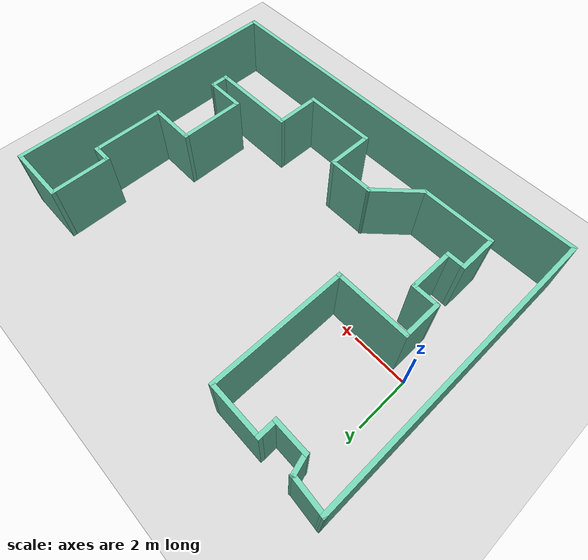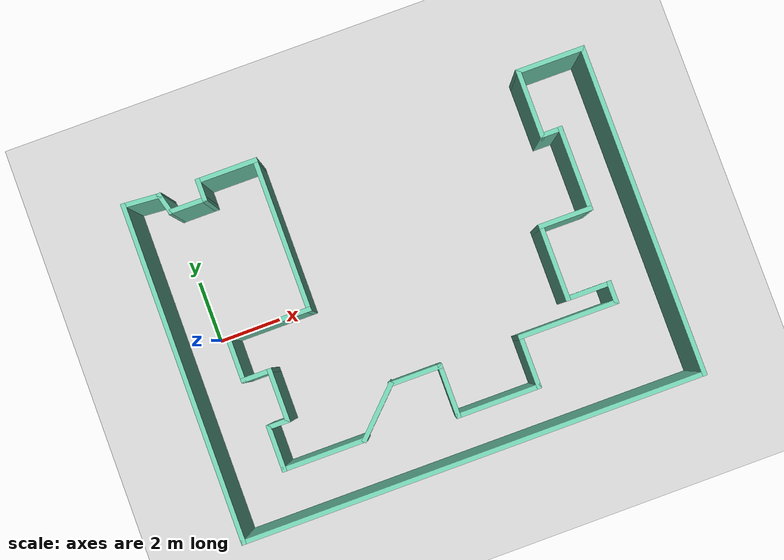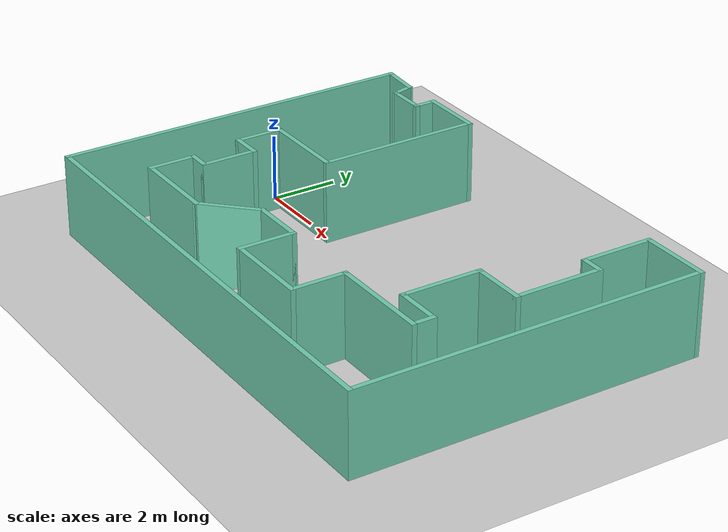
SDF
<sdf version="1.6">
 <world name="default">
  <light name="sun" type="directional">
   <pose>0 0 10 0 -0 0</pose>
   <diffuse>0.8 0.8 0.8 1</diffuse>
   <specular>0.2 0.2 0.2 1</specular>
   <attenuation>
    <range>1000</range>
    <constant>0.9</constant>
    <linear>0.01</linear>
    <quadratic>0.001</quadratic>
   </attenuation>
   <direction>-0.5 0.1 -0.9</direction>
  </light>
  <model name="ground_plane">
   <static>1</static>
   <link name="link">
    <collision name="collision">
     <geometry><plane><normal>0 0 1</normal><size>100 100</size></plane></geometry>
     <surface>
      <contact><collide_bitmask>65535</collide_bitmask></contact>
      <friction><ode><mu>100</mu><mu2>50</mu2></ode></friction>
     </surface>
    </collision>
    <visual name="visual">
     <cast_shadows>0</cast_shadows>
     <geometry><plane><normal>0 0 1</normal><size>100 100</size></plane></geometry>
     <material>
      <script><uri>file://media/materials/scripts/gazebo.material</uri><name>Gazebo/Grey</name></script>
     </material>
    </visual>
   </link>
  </model>
  <gravity>0 0 -9.8</gravity>
  <magnetic_field>6e-06 2.3e-05 -4.2e-05</magnetic_field>
  <atmosphere type="adiabatic"/>
  <physics name="default_physics" default="0" type="ode">
   <max_step_size>0.001</max_step_size>
   <real_time_factor>1</real_time_factor>
   <real_time_update_rate>1000</real_time_update_rate>
  </physics>
  <scene><ambient>0.4 0.4 0.4 1</ambient><background>0.7 0.7 0.7 1</background><shadows>1</shadows></scene>
  <spherical_coordinates>
   <surface_model>EARTH_WGS84</surface_model>
   <latitude_deg>0</latitude_deg>
   <longitude_deg>0</longitude_deg>
   <elevation>0</elevation>
   <heading_deg>0</heading_deg>
  </spherical_coordinates>
  <model name="u.world">
   <pose>6.35241 -0.663313 0 0 -0 0</pose>
   <link name="Wall_0">
    <collision name="Wall_0_Collision">
     <geometry><box><size>11 0.15 2.5</size></box></geometry>
     <pose>0 0 1.25 0 -0 0</pose>
    </collision>
    <visual name="Wall_0_Visual">
     <pose>0 0 1.25 0 -0 0</pose>
     <geometry><box><size>11 0.15 2.5</size></box></geometry>
     <material>
      <script><uri>file://media/materials/scripts/gazebo.material</uri><name>Gazebo/Grey</name></script>
      <ambient>0.435294 0.796078 0.67451 1</ambient>
     </material>
     <meta><layer>0</layer></meta>
    </visual>
    <pose>-7.4225 -0.002497 0 0 0 -1.5708</pose>
   </link>
   <link name="Wall_1">
    <collision name="Wall_1_Collision">
     <geometry><box><size>15 0.15 2.5</size></box></geometry>
     <pose>0 0 1.25 0 -0 0</pose>
    </collision>
    <visual name="Wall_1_Visual">
     <pose>0 0 1.25 0 -0 0</pose>
     <geometry><box><size>15 0.15 2.5</size></box></geometry>
     <material>
      <script><uri>file://media/materials/scripts/gazebo.material</uri><name>Gazebo/Grey</name></script>
      <ambient>0.435294 0.796078 0.67451 1</ambient>
     </material>
     <meta><layer>0</layer></meta>
    </visual>
    <pose>0.002497 -5.4275 0 0 -0 0</pose>
   </link>
   <link name="Wall_10">
    <collision name="Wall_10_Collision">
     <geometry><box><size>0.75 0.15 2.5</size></box></geometry>
     <pose>0 0 1.25 0 -0 0</pose>
    </collision>
    <visual name="Wall_10_Visual">
     <pose>0 0 1.25 0 -0 0</pose>
     <geometry><box><size>0.75 0.15 2.5</size></box></geometry>
     <material>
      <script><uri>file://media/materials/scripts/gazebo.material</uri><name>Gazebo/Grey</name></script>
      <ambient>0.435294 0.796078 0.67451 1</ambient>
     </material>
     <meta><layer>0</layer></meta>
    </visual>
    <pose>5.6775 -2.1775 0 0 0 -1.5708</pose>
   </link>
   <link name="Wall_11">
    <collision name="Wall_11_Collision">
     <geometry><box><size>3.25 0.15 2.5</size></box></geometry>
     <pose>0 0 1.25 0 -0 0</pose>
    </collision>
    <visual name="Wall_11_Visual">
     <pose>0 0 1.25 0 -0 0</pose>
     <geometry><box><size>3.25 0.15 2.5</size></box></geometry>
     <material>
      <script><uri>file://media/materials/scripts/gazebo.material</uri><name>Gazebo/Grey</name></script>
      <ambient>0.435294 0.796078 0.67451 1</ambient>
     </material>
     <meta><layer>0</layer></meta>
    </visual>
    <pose>4.1275 -2.4775 0 0 -0 3.14159</pose>
   </link>
   <link name="Wall_12">
    <collision name="Wall_12_Collision">
     <geometry><box><size>1.75 0.15 2.5</size></box></geometry>
     <pose>0 0 1.25 0 -0 0</pose>
    </collision>
    <visual name="Wall_12_Visual">
     <pose>0 0 1.25 0 -0 0</pose>
     <geometry><box><size>1.75 0.15 2.5</size></box></geometry>
     <material>
      <script><uri>file://media/materials/scripts/gazebo.material</uri><name>Gazebo/Grey</name></script>
      <ambient>0.435294 0.796078 0.67451 1</ambient>
     </material>
     <meta><layer>0</layer></meta>
    </visual>
    <pose>2.5775 -3.2775 0 0 0 -1.5708</pose>
   </link>
   <link name="Wall_13">
    <collision name="Wall_13_Collision">
     <geometry><box><size>2.75 0.15 2.5</size></box></geometry>
     <pose>0 0 1.25 0 -0 0</pose>
    </collision>
    <visual name="Wall_13_Visual">
     <pose>0 0 1.25 0 -0 0</pose>
     <geometry><box><size>2.75 0.15 2.5</size></box></geometry>
     <material>
      <script><uri>file://media/materials/scripts/gazebo.material</uri><name>Gazebo/Grey</name></script>
      <ambient>0.435294 0.796078 0.67451 1</ambient>
     </material>
     <meta><layer>0</layer></meta>
    </visual>
    <pose>1.2775 -4.0775 0 0 -0 3.14159</pose>
   </link>
   <link name="Wall_14">
    <collision name="Wall_14_Collision">
     <geometry><box><size>1.75 0.15 2.5</size></box></geometry>
     <pose>0 0 1.25 0 -0 0</pose>
    </collision>
    <visual name="Wall_14_Visual">
     <pose>0 0 1.25 0 -0 0</pose>
     <geometry><box><size>1.75 0.15 2.5</size></box></geometry>
     <material>
      <script><uri>file://media/materials/scripts/gazebo.material</uri><name>Gazebo/Grey</name></script>
      <ambient>0.435294 0.796078 0.67451 1</ambient>
     </material>
     <meta><layer>0</layer></meta>
    </visual>
    <pose>-0.022503 -3.2775 0 0 -0 1.5708</pose>
   </link>
   <link name="Wall_15">
    <collision name="Wall_15_Collision">
     <geometry><box><size>1.75 0.15 2.5</size></box></geometry>
     <pose>0 0 1.25 0 -0 0</pose>
    </collision>
    <visual name="Wall_15_Visual">
     <pose>0 0 1.25 0 -0 0</pose>
     <geometry><box><size>1.75 0.15 2.5</size></box></geometry>
     <material>
      <script><uri>file://media/materials/scripts/gazebo.material</uri><name>Gazebo/Grey</name></script>
      <ambient>0.435294 0.796078 0.67451 1</ambient>
     </material>
     <meta><layer>0</layer></meta>
    </visual>
    <pose>-0.822503 -2.4775 0 0 -0 3.14159</pose>
   </link>
   <link name="Wall_16">
    <collision name="Wall_16_Collision">
     <geometry><box><size>2 0.15 2.5</size></box></geometry>
     <pose>0 0 1.25 0 -0 0</pose>
    </collision>
    <visual name="Wall_16_Visual">
     <pose>0 0 1.25 0 -0 0</pose>
     <geometry><box><size>2 0.15 2.5</size></box></geometry>
     <material>
      <script><uri>file://media/materials/scripts/gazebo.material</uri><name>Gazebo/Grey</name></script>
      <ambient>0.435294 0.796078 0.67451 1</ambient>
     </material>
     <meta><layer>0</layer></meta>
    </visual>
    <pose>-2.27658 -3.13157 0 0 0 -2.35619</pose>
   </link>
   <link name="Wall_17">
    <collision name="Wall_17_Collision">
     <geometry><box><size>2.75 0.15 2.5</size></box></geometry>
     <pose>0 0 1.25 0 -0 0</pose>
    </collision>
    <visual name="Wall_17_Visual">
     <pose>0 0 1.25 0 -0 0</pose>
     <geometry><box><size>2.75 0.15 2.5</size></box></geometry>
     <material>
      <script><uri>file://media/materials/scripts/gazebo.material</uri><name>Gazebo/Grey</name></script>
      <ambient>0.435294 0.796078 0.67451 1</ambient>
     </material>
     <meta><layer>0</layer></meta>
    </visual>
    <pose>-4.23065 -3.78565 0 0 -0 3.14159</pose>
   </link>
   <link name="Wall_18">
    <collision name="Wall_18_Collision">
     <geometry><box><size>1.5 0.15 2.5</size></box></geometry>
     <pose>0 0 1.25 0 -0 0</pose>
    </collision>
    <visual name="Wall_18_Visual">
     <pose>0 0 1.25 0 -0 0</pose>
     <geometry><box><size>1.5 0.15 2.5</size></box></geometry>
     <material>
      <script><uri>file://media/materials/scripts/gazebo.material</uri><name>Gazebo/Grey</name></script>
      <ambient>0.435294 0.796078 0.67451 1</ambient>
     </material>
     <meta><layer>0</layer></meta>
    </visual>
    <pose>-5.53065 -3.11064 0 0 -0 1.5708</pose>
   </link>
   <link name="Wall_19">
    <collision name="Wall_19_Collision">
     <geometry><box><size>0.75 0.15 2.5</size></box></geometry>
     <pose>0 0 1.25 0 -0 0</pose>
    </collision>
    <visual name="Wall_19_Visual">
     <pose>0 0 1.25 0 -0 0</pose>
     <geometry><box><size>0.75 0.15 2.5</size></box></geometry>
     <material>
      <script><uri>file://media/materials/scripts/gazebo.material</uri><name>Gazebo/Grey</name></script>
      <ambient>0.435294 0.796078 0.67451 1</ambient>
     </material>
     <meta><layer>0</layer></meta>
    </visual>
    <pose>-5.23065 -2.43565 0 0 -0 0</pose>
   </link>
   <link name="Wall_2">
    <collision name="Wall_2_Collision">
     <geometry><box><size>10.75 0.15 2.5</size></box></geometry>
     <pose>0 0 1.25 0 -0 0</pose>
    </collision>
    <visual name="Wall_2_Visual">
     <pose>0 0 1.25 0 -0 0</pose>
     <geometry><box><size>10.75 0.15 2.5</size></box></geometry>
     <material>
      <script><uri>file://media/materials/scripts/gazebo.material</uri><name>Gazebo/Grey</name></script>
      <ambient>0.435294 0.796078 0.67451 1</ambient>
     </material>
     <meta><layer>0</layer></meta>
    </visual>
    <pose>7.4275 -0.127497 0 0 -0 1.5708</pose>
   </link>
   <link name="Wall_20">
    <collision name="Wall_20_Collision">
     <geometry><box><size>1.75 0.15 2.5</size></box></geometry>
     <pose>0 0 1.25 0 -0 0</pose>
    </collision>
    <visual name="Wall_20_Visual">
     <pose>0 0 1.25 0 -0 0</pose>
     <geometry><box><size>1.75 0.15 2.5</size></box></geometry>
     <material>
      <script><uri>file://media/materials/scripts/gazebo.material</uri><name>Gazebo/Grey</name></script>
      <ambient>0.435294 0.796078 0.67451 1</ambient>
     </material>
     <meta><layer>0</layer></meta>
    </visual>
    <pose>-4.93065 -1.63565 0 0 -0 1.5708</pose>
   </link>
   <link name="Wall_21">
    <collision name="Wall_21_Collision">
     <geometry><box><size>1 0.15 2.5</size></box></geometry>
     <pose>0 0 1.25 0 -0 0</pose>
    </collision>
    <visual name="Wall_21_Visual">
     <pose>0 0 1.25 0 -0 0</pose>
     <geometry><box><size>1 0.15 2.5</size></box></geometry>
     <material>
      <script><uri>file://media/materials/scripts/gazebo.material</uri><name>Gazebo/Grey</name></script>
      <ambient>0.435294 0.796078 0.67451 1</ambient>
     </material>
     <meta><layer>0</layer></meta>
    </visual>
    <pose>-5.35565 -0.835645 0 0 -0 3.14159</pose>
   </link>
   <link name="Wall_22">
    <collision name="Wall_22_Collision">
     <geometry><box><size>1.5 0.15 2.5</size></box></geometry>
     <pose>0 0 1.25 0 -0 0</pose>
    </collision>
    <visual name="Wall_22_Visual">
     <pose>0 0 1.25 0 -0 0</pose>
     <geometry><box><size>1.5 0.15 2.5</size></box></geometry>
     <material>
      <script><uri>file://media/materials/scripts/gazebo.material</uri><name>Gazebo/Grey</name></script>
      <ambient>0.435294 0.796078 0.67451 1</ambient>
     </material>
     <meta><layer>0</layer></meta>
    </visual>
    <pose>-5.78065 -0.160645 0 0 -0 1.5708</pose>
   </link>
   <link name="Wall_23">
    <collision name="Wall_23_Collision">
     <geometry><box><size>2.75 0.15 2.5</size></box></geometry>
     <pose>0 0 1.25 0 -0 0</pose>
    </collision>
    <visual name="Wall_23_Visual">
     <pose>0 0 1.25 0 -0 0</pose>
     <geometry><box><size>2.75 0.15 2.5</size></box></geometry>
     <material>
      <script><uri>file://media/materials/scripts/gazebo.material</uri><name>Gazebo/Grey</name></script>
      <ambient>0.435294 0.796078 0.67451 1</ambient>
     </material>
     <meta><layer>0</layer></meta>
    </visual>
    <pose>-4.48065 0.514355 0 0 -0 0</pose>
   </link>
   <link name="Wall_24">
    <collision name="Wall_24_Collision">
     <geometry><box><size>5 0.15 2.5</size></box></geometry>
     <pose>0 0 1.25 0 -0 0</pose>
    </collision>
    <visual name="Wall_24_Visual">
     <pose>0 0 1.25 0 -0 0</pose>
     <geometry><box><size>5 0.15 2.5</size></box></geometry>
     <material>
      <script><uri>file://media/materials/scripts/gazebo.material</uri><name>Gazebo/Grey</name></script>
      <ambient>0.435294 0.796078 0.67451 1</ambient>
     </material>
     <meta><layer>0</layer></meta>
    </visual>
    <pose>-3.18065 2.93935 0 0 -0 1.5708</pose>
   </link>
   <link name="Wall_25">
    <collision name="Wall_25_Collision">
     <geometry><box><size>2 0.15 2.5</size></box></geometry>
     <pose>0 0 1.25 0 -0 0</pose>
    </collision>
    <visual name="Wall_25_Visual">
     <pose>0 0 1.25 0 -0 0</pose>
     <geometry><box><size>2 0.15 2.5</size></box></geometry>
     <material>
      <script><uri>file://media/materials/scripts/gazebo.material</uri><name>Gazebo/Grey</name></script>
      <ambient>0.435294 0.796078 0.67451 1</ambient>
     </material>
     <meta><layer>0</layer></meta>
    </visual>
    <pose>-4.10565 5.36435 0 0 -0 3.14159</pose>
   </link>
   <link name="Wall_26">
    <collision name="Wall_26_Collision">
     <geometry><box><size>0.75 0.15 2.5</size></box></geometry>
     <pose>0 0 1.25 0 -0 0</pose>
    </collision>
    <visual name="Wall_26_Visual">
     <pose>0 0 1.25 0 -0 0</pose>
     <geometry><box><size>0.75 0.15 2.5</size></box></geometry>
     <material>
      <script><uri>file://media/materials/scripts/gazebo.material</uri><name>Gazebo/Grey</name></script>
      <ambient>0.435294 0.796078 0.67451 1</ambient>
     </material>
     <meta><layer>0</layer></meta>
    </visual>
    <pose>-5.03065 5.06435 0 0 0 -1.5708</pose>
   </link>
   <link name="Wall_27">
    <collision name="Wall_27_Collision">
     <geometry><box><size>1.25 0.15 2.5</size></box></geometry>
     <pose>0 0 1.25 0 -0 0</pose>
    </collision>
    <visual name="Wall_27_Visual">
     <pose>0 0 1.25 0 -0 0</pose>
     <geometry><box><size>1.25 0.15 2.5</size></box></geometry>
     <material>
      <script><uri>file://media/materials/scripts/gazebo.material</uri><name>Gazebo/Grey</name></script>
      <ambient>0.435294 0.796078 0.67451 1</ambient>
     </material>
     <meta><layer>0</layer></meta>
    </visual>
    <pose>-5.58065 4.76436 0 0 -0 3.14159</pose>
   </link>
   <link name="Wall_28">
    <collision name="Wall_28_Collision">
     <geometry><box><size>0.75 0.15 2.5</size></box></geometry>
     <pose>0 0 1.25 0 -0 0</pose>
    </collision>
    <visual name="Wall_28_Visual">
     <pose>0 0 1.25 0 -0 0</pose>
     <geometry><box><size>0.75 0.15 2.5</size></box></geometry>
     <material>
      <script><uri>file://media/materials/scripts/gazebo.material</uri><name>Gazebo/Grey</name></script>
      <ambient>0.435294 0.796078 0.67451 1</ambient>
     </material>
     <meta><layer>0</layer></meta>
    </visual>
    <pose>-6.2083 5.05413 0 0 -0 1.8326</pose>
   </link>
   <link name="Wall_29">
    <collision name="Wall_29_Collision">
     <geometry><box><size>1.28927 0.15 2.5</size></box></geometry>
     <pose>0 0 1.25 0 -0 0</pose>
    </collision>
    <visual name="Wall_29_Visual">
     <pose>0 0 1.25 0 -0 0</pose>
     <geometry><box><size>1.28927 0.15 2.5</size></box></geometry>
     <material>
      <script><uri>file://media/materials/scripts/gazebo.material</uri><name>Gazebo/Grey</name></script>
      <ambient>0.435294 0.796078 0.67451 1</ambient>
     </material>
     <meta><layer>0</layer></meta>
    </visual>
    <pose>-6.85422 5.38321 0 0 -0 3.07255</pose>
   </link>
   <link name="Wall_3">
    <collision name="Wall_3_Collision">
     <geometry><box><size>2.25 0.15 2.5</size></box></geometry>
     <pose>0 0 1.25 0 -0 0</pose>
    </collision>
    <visual name="Wall_3_Visual">
     <pose>0 0 1.25 0 -0 0</pose>
     <geometry><box><size>2.25 0.15 2.5</size></box></geometry>
     <material>
      <script><uri>file://media/materials/scripts/gazebo.material</uri><name>Gazebo/Grey</name></script>
      <ambient>0.435294 0.796078 0.67451 1</ambient>
     </material>
     <meta><layer>0</layer></meta>
    </visual>
    <pose>6.3775 5.1725 0 0 -0 3.14159</pose>
   </link>
   <link name="Wall_4">
    <collision name="Wall_4_Collision">
     <geometry><box><size>2.25 0.15 2.5</size></box></geometry>
     <pose>0 0 1.25 0 -0 0</pose>
    </collision>
    <visual name="Wall_4_Visual">
     <pose>0 0 1.25 0 -0 0</pose>
     <geometry><box><size>2.25 0.15 2.5</size></box></geometry>
     <material>
      <script><uri>file://media/materials/scripts/gazebo.material</uri><name>Gazebo/Grey</name></script>
      <ambient>0.435294 0.796078 0.67451 1</ambient>
     </material>
     <meta><layer>0</layer></meta>
    </visual>
    <pose>5.3275 4.1225 0 0 0 -1.5708</pose>
   </link>
   <link name="Wall_5">
    <collision name="Wall_5_Collision">
     <geometry><box><size>0.75 0.15 2.5</size></box></geometry>
     <pose>0 0 1.25 0 -0 0</pose>
    </collision>
    <visual name="Wall_5_Visual">
     <pose>0 0 1.25 0 -0 0</pose>
     <geometry><box><size>0.75 0.15 2.5</size></box></geometry>
     <material>
      <script><uri>file://media/materials/scripts/gazebo.material</uri><name>Gazebo/Grey</name></script>
      <ambient>0.435294 0.796078 0.67451 1</ambient>
     </material>
     <meta><layer>0</layer></meta>
    </visual>
    <pose>5.6275 3.0725 0 0 -0 0</pose>
   </link>
   <link name="Wall_6">
    <collision name="Wall_6_Collision">
     <geometry><box><size>2.75 0.15 2.5</size></box></geometry>
     <pose>0 0 1.25 0 -0 0</pose>
    </collision>
    <visual name="Wall_6_Visual">
     <pose>0 0 1.25 0 -0 0</pose>
     <geometry><box><size>2.75 0.15 2.5</size></box></geometry>
     <material>
      <script><uri>file://media/materials/scripts/gazebo.material</uri><name>Gazebo/Grey</name></script>
      <ambient>0.435294 0.796078 0.67451 1</ambient>
     </material>
     <meta><layer>0</layer></meta>
    </visual>
    <pose>5.9275 1.7725 0 0 0 -1.5708</pose>
   </link>
   <link name="Wall_7">
    <collision name="Wall_7_Collision">
     <geometry><box><size>1.75 0.15 2.5</size></box></geometry>
     <pose>0 0 1.25 0 -0 0</pose>
    </collision>
    <visual name="Wall_7_Visual">
     <pose>0 0 1.25 0 -0 0</pose>
     <geometry><box><size>1.75 0.15 2.5</size></box></geometry>
     <material>
      <script><uri>file://media/materials/scripts/gazebo.material</uri><name>Gazebo/Grey</name></script>
      <ambient>0.435294 0.796078 0.67451 1</ambient>
     </material>
     <meta><layer>0</layer></meta>
    </visual>
    <pose>5.1275 0.472503 0 0 -0 3.14159</pose>
   </link>
   <link name="Wall_8">
    <collision name="Wall_8_Collision">
     <geometry><box><size>2.5 0.15 2.5</size></box></geometry>
     <pose>0 0 1.25 0 -0 0</pose>
    </collision>
    <visual name="Wall_8_Visual">
     <pose>0 0 1.25 0 -0 0</pose>
     <geometry><box><size>2.5 0.15 2.5</size></box></geometry>
     <material>
      <script><uri>file://media/materials/scripts/gazebo.material</uri><name>Gazebo/Grey</name></script>
      <ambient>0.435294 0.796078 0.67451 1</ambient>
     </material>
     <meta><layer>0</layer></meta>
    </visual>
    <pose>4.3275 -0.702497 0 0 0 -1.5708</pose>
   </link>
   <link name="Wall_9">
    <collision name="Wall_9_Collision">
     <geometry><box><size>1.5 0.15 2.5</size></box></geometry>
     <pose>0 0 1.25 0 -0 0</pose>
    </collision>
    <visual name="Wall_9_Visual">
     <pose>0 0 1.25 0 -0 0</pose>
     <geometry><box><size>1.5 0.15 2.5</size></box></geometry>
     <material>
      <script><uri>file://media/materials/scripts/gazebo.material</uri><name>Gazebo/Grey</name></script>
      <ambient>0.435294 0.796078 0.67451 1</ambient>
     </material>
     <meta><layer>0</layer></meta>
    </visual>
    <pose>5.0025 -1.8775 0 0 -0 0</pose>
   </link>
   <static>1</static>
  </model>
  <plugin filename="libcollision_map_creator.so" name="collision_map_creator"/>
 </world>
</sdf>
